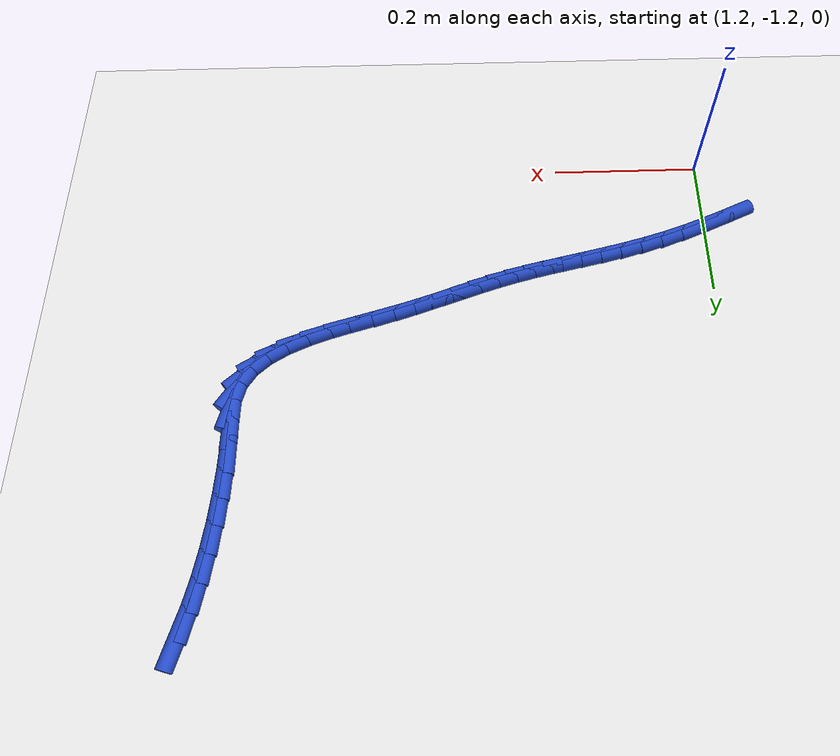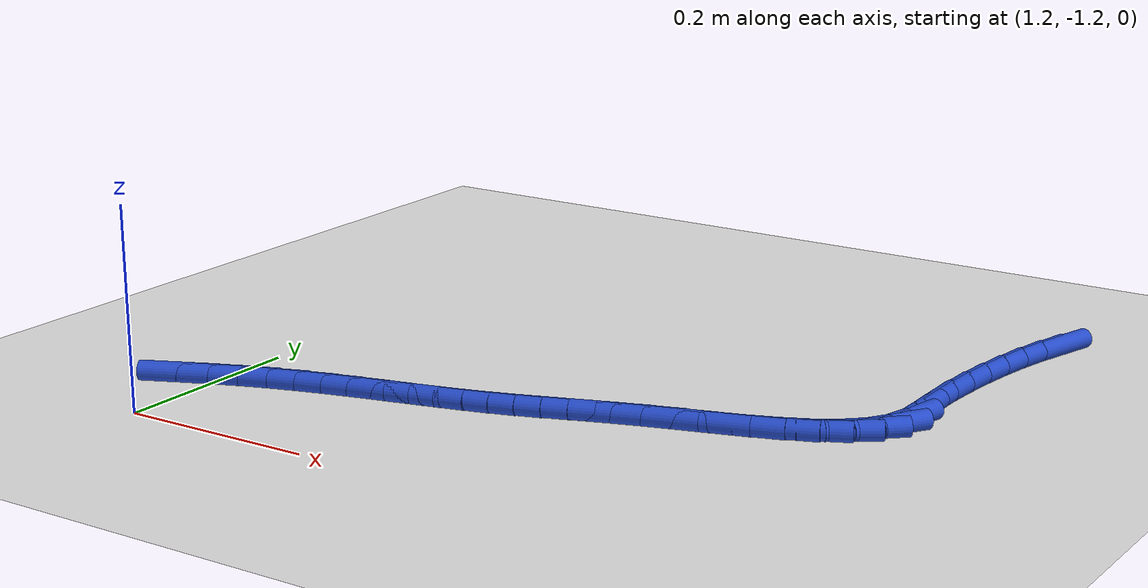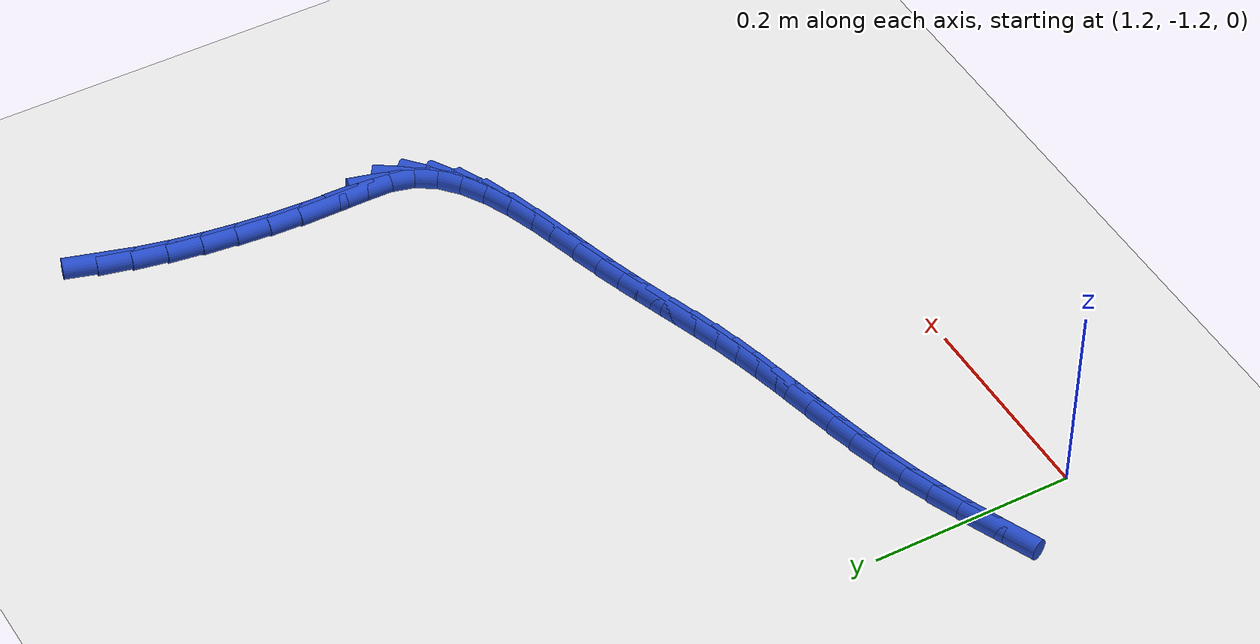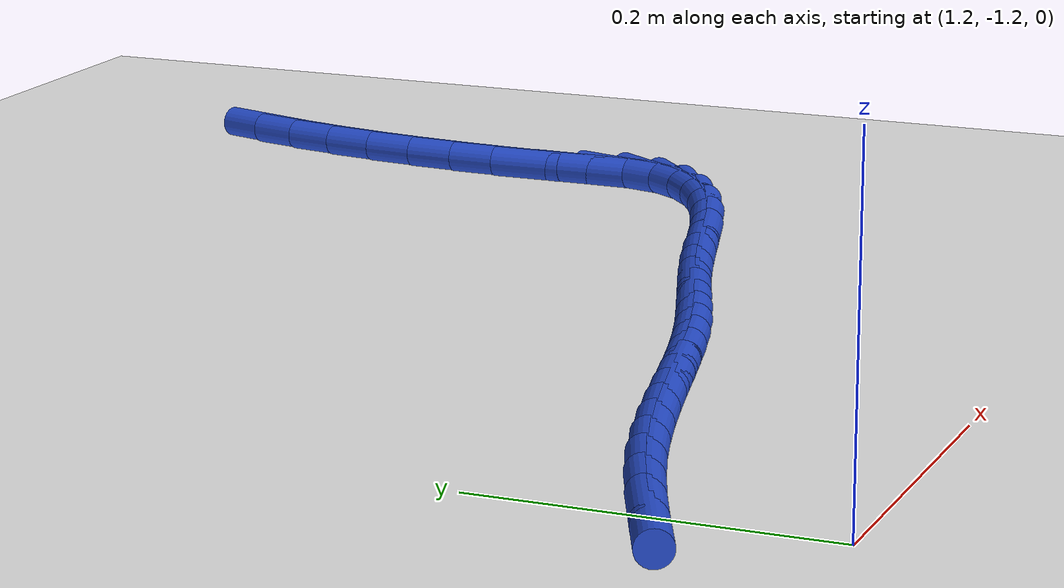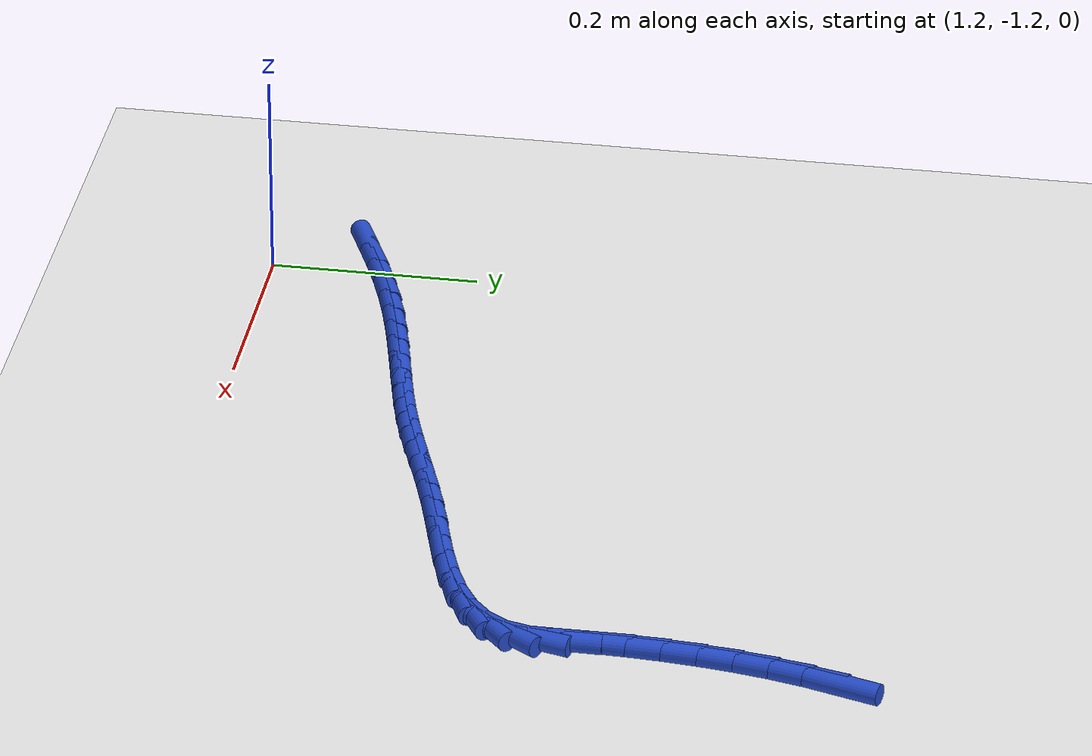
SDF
<sdf version="1.6">
 <world name="default">
  <model name="ground_plane">
   <static>1</static>
   <link name="link">
    <collision name="collision">
     <geometry><plane><normal>0 0 1</normal><size>100 100</size></plane></geometry>
     <surface><friction><ode><mu>100</mu><mu2>50</mu2></ode></friction></surface>
    </collision>
    <visual name="visual">
     <cast_shadows>0</cast_shadows>
     <geometry><plane><normal>0 0 1</normal><size>100 100</size></plane></geometry>
     <material>
      <script><uri>file://media/materials/scripts/gazebo.material</uri><name>Gazebo/WhiteGlow</name></script>
     </material>
    </visual>
   </link>
  </model>
  <model name="line">
   <link name="link_174">
    <pose>1.8558503074562895 -0.5679464968411793 0.01 0 1.57 1.282922517592219</pose>
    <collision name="collision">
     <geometry><cylinder><radius>0.01</radius><length>0.08</length></cylinder></geometry>
    </collision>
    <visual name="visual">
     <material>
      <script><name>Gazebo/Blue</name><uri>file://media/materials/scripts/gazebo.material</uri></script>
     </material>
     <geometry><cylinder><radius>0.01</radius><length>0.08</length></cylinder></geometry>
    </visual>
   </link>
   <link name="link_175">
    <pose>1.8469704388279358 -0.5979360508107192 0.01 0 1.57 1.343258709907164</pose>
    <collision name="collision">
     <geometry><cylinder><radius>0.01</radius><length>0.08</length></cylinder></geometry>
    </collision>
    <visual name="visual">
     <material>
      <script><name>Gazebo/Blue</name><uri>file://media/materials/scripts/gazebo.material</uri></script>
     </material>
     <geometry><cylinder><radius>0.01</radius><length>0.08</length></cylinder></geometry>
    </visual>
   </link>
   <link name="link_176">
    <pose>1.8396580727152667 -0.6295164690733773 0.01 0 1.57 1.3939073807482503</pose>
    <collision name="collision">
     <geometry><cylinder><radius>0.01</radius><length>0.08</length></cylinder></geometry>
    </collision>
    <visual name="visual">
     <material>
      <script><name>Gazebo/Blue</name><uri>file://media/materials/scripts/gazebo.material</uri></script>
     </material>
     <geometry><cylinder><radius>0.01</radius><length>0.08</length></cylinder></geometry>
    </visual>
   </link>
   <link name="link_177">
    <pose>1.8338266723658756 -0.6621383615480727 0.01 0 1.57 1.4375987750736676</pose>
    <collision name="collision">
     <geometry><cylinder><radius>0.01</radius><length>0.08</length></cylinder></geometry>
    </collision>
    <visual name="visual">
     <material>
      <script><name>Gazebo/Blue</name><uri>file://media/materials/scripts/gazebo.material</uri></script>
     </material>
     <geometry><cylinder><radius>0.01</radius><length>0.08</length></cylinder></geometry>
    </visual>
   </link>
   <link name="link_178">
    <pose>1.8293897010273585 -0.695252338153725 0.01 0 1.57 1.4764195103034348</pose>
    <collision name="collision">
     <geometry><cylinder><radius>0.01</radius><length>0.08</length></cylinder></geometry>
    </collision>
    <visual name="visual">
     <material>
      <script><name>Gazebo/Blue</name><uri>file://media/materials/scripts/gazebo.material</uri></script>
     </material>
     <geometry><cylinder><radius>0.01</radius><length>0.08</length></cylinder></geometry>
    </visual>
   </link>
   <link name="link_179">
    <pose>1.8262606219473083 -0.7283090088092534 0.01 0 1.57 1.5120742383769348</pose>
    <collision name="collision">
     <geometry><cylinder><radius>0.01</radius><length>0.08</length></cylinder></geometry>
    </collision>
    <visual name="visual">
     <material>
      <script><name>Gazebo/Blue</name><uri>file://media/materials/scripts/gazebo.material</uri></script>
     </material>
     <geometry><cylinder><radius>0.01</radius><length>0.08</length></cylinder></geometry>
    </visual>
   </link>
   <link name="link_180">
    <pose>1.8243528983733204 -0.7607589834335778 0.01 0 1.57 1.5461030797705562</pose>
    <collision name="collision">
     <geometry><cylinder><radius>0.01</radius><length>0.08</length></cylinder></geometry>
    </collision>
    <visual name="visual">
     <material>
      <script><name>Gazebo/Blue</name><uri>file://media/materials/scripts/gazebo.material</uri></script>
     </material>
     <geometry><cylinder><radius>0.01</radius><length>0.08</length></cylinder></geometry>
    </visual>
   </link>
   <link name="link_181">
    <pose>1.823579993552988 -0.7920528719456181 0.01 0 1.57 -1.5615964353924794</pose>
    <collision name="collision">
     <geometry><cylinder><radius>0.01</radius><length>0.08</length></cylinder></geometry>
    </collision>
    <visual name="visual">
     <material>
      <script><name>Gazebo/Blue</name><uri>file://media/materials/scripts/gazebo.material</uri></script>
     </material>
     <geometry><cylinder><radius>0.01</radius><length>0.08</length></cylinder></geometry>
    </visual>
   </link>
   <link name="link_182">
    <pose>1.8238522074912762 -0.8216408579833799 0.01 0 1.57 1.5576631695762932</pose>
    <collision name="collision">
     <geometry><cylinder><radius>0.01</radius><length>0.08</length></cylinder></geometry>
    </collision>
    <visual name="visual">
     <material>
      <script><name>Gazebo/Blue</name><uri>file://media/materials/scripts/gazebo.material</uri></script>
     </material>
     <geometry><cylinder><radius>0.01</radius><length>0.08</length></cylinder></geometry>
    </visual>
   </link>
   <link name="link_183">
    <pose>1.823496031130066 -0.8487596899064013 0.01 0 1.57 1.314437724903297</pose>
    <collision name="collision">
     <geometry><cylinder><radius>0.01</radius><length>0.08</length></cylinder></geometry>
    </collision>
    <visual name="visual">
     <material>
      <script><name>Gazebo/Blue</name><uri>file://media/materials/scripts/gazebo.material</uri></script>
     </material>
     <geometry><cylinder><radius>0.01</radius><length>0.08</length></cylinder></geometry>
    </visual>
   </link>
   <link name="link_184">
    <pose>1.8173383029628505 -0.8722511531645064 0.01 0 1.57 0.9904821658001113</pose>
    <collision name="collision">
     <geometry><cylinder><radius>0.01</radius><length>0.08</length></cylinder></geometry>
    </collision>
    <visual name="visual">
     <material>
      <script><name>Gazebo/Blue</name><uri>file://media/materials/scripts/gazebo.material</uri></script>
     </material>
     <geometry><cylinder><radius>0.01</radius><length>0.08</length></cylinder></geometry>
    </visual>
   </link>
   <link name="link_185">
    <pose>1.804336502430473 -0.8920825326689694 0.01 0 1.57 0.7277628560491689</pose>
    <collision name="collision">
     <geometry><cylinder><radius>0.01</radius><length>0.08</length></cylinder></geometry>
    </collision>
    <visual name="visual">
     <material>
      <script><name>Gazebo/Blue</name><uri>file://media/materials/scripts/gazebo.material</uri></script>
     </material>
     <geometry><cylinder><radius>0.01</radius><length>0.08</length></cylinder></geometry>
    </visual>
   </link>
   <link name="link_186">
    <pose>1.7856076430463494 -0.9087680126335397 0.01 0 1.57 0.5422851022398922</pose>
    <collision name="collision">
     <geometry><cylinder><radius>0.01</radius><length>0.08</length></cylinder></geometry>
    </collision>
    <visual name="visual">
     <material>
      <script><name>Gazebo/Blue</name><uri>file://media/materials/scripts/gazebo.material</uri></script>
     </material>
     <geometry><cylinder><radius>0.01</radius><length>0.08</length></cylinder></geometry>
    </visual>
   </link>
   <link name="link_187">
    <pose>1.7622790919613938 -0.9228243993177122 0.01 0 1.57 0.4192395900970782</pose>
    <collision name="collision">
     <geometry><cylinder><radius>0.01</radius><length>0.08</length></cylinder></geometry>
    </collision>
    <visual name="visual">
     <material>
      <script><name>Gazebo/Blue</name><uri>file://media/materials/scripts/gazebo.material</uri></script>
     </material>
     <geometry><cylinder><radius>0.01</radius><length>0.08</length></cylinder></geometry>
    </visual>
   </link>
   <link name="link_188">
    <pose>1.7354782163265192 -0.9347684989809816 0.01 0 1.57 0.3411785126042</pose>
    <collision name="collision">
     <geometry><cylinder><radius>0.01</radius><length>0.08</length></cylinder></geometry>
    </collision>
    <visual name="visual">
     <material>
      <script><name>Gazebo/Blue</name><uri>file://media/materials/scripts/gazebo.material</uri></script>
     </material>
     <geometry><cylinder><radius>0.01</radius><length>0.08</length></cylinder></geometry>
    </visual>
   </link>
   <link name="link_189">
    <pose>1.7063323832926387 -0.9451171178828417 0.01 0 1.57 0.2963117961967088</pose>
    <collision name="collision">
     <geometry><cylinder><radius>0.01</radius><length>0.08</length></cylinder></geometry>
    </collision>
    <visual name="visual">
     <material>
      <script><name>Gazebo/Blue</name><uri>file://media/materials/scripts/gazebo.material</uri></script>
     </material>
     <geometry><cylinder><radius>0.01</radius><length>0.08</length></cylinder></geometry>
    </visual>
   </link>
   <link name="link_190">
    <pose>1.675968960010666 -0.9543870622827884 0.01 0 1.57 0.2785131981245011</pose>
    <collision name="collision">
     <geometry><cylinder><radius>0.01</radius><length>0.08</length></cylinder></geometry>
    </collision>
    <visual name="visual">
     <material>
      <script><name>Gazebo/Blue</name><uri>file://media/materials/scripts/gazebo.material</uri></script>
     </material>
     <geometry><cylinder><radius>0.01</radius><length>0.08</length></cylinder></geometry>
    </visual>
   </link>
   <link name="link_191">
    <pose>1.6455153136315162 -0.963095138440315 0.01 0 1.57 0.28631481158759475</pose>
    <collision name="collision">
     <geometry><cylinder><radius>0.01</radius><length>0.08</length></cylinder></geometry>
    </collision>
    <visual name="visual">
     <material>
      <script><name>Gazebo/Blue</name><uri>file://media/materials/scripts/gazebo.material</uri></script>
     </material>
     <geometry><cylinder><radius>0.01</radius><length>0.08</length></cylinder></geometry>
    </visual>
   </link>
   <link name="link_192">
    <pose>1.6160953575299095 -0.9717564859586432 0.01 0 1.57 0.31084357801870904</pose>
    <collision name="collision">
     <geometry><cylinder><radius>0.01</radius><length>0.08</length></cylinder></geometry>
    </collision>
    <visual name="visual">
     <material>
      <script><name>Gazebo/Blue</name><uri>file://media/materials/scripts/gazebo.material</uri></script>
     </material>
     <geometry><cylinder><radius>0.01</radius><length>0.08</length></cylinder></geometry>
    </visual>
   </link>
   <link name="link_193">
    <pose>1.5883708204503584 -0.9806632123536233 0.01 0 1.57 0.32979973446598054</pose>
    <collision name="collision">
     <geometry><cylinder><radius>0.01</radius><length>0.08</length></cylinder></geometry>
    </collision>
    <visual name="visual">
     <material>
      <script><name>Gazebo/Blue</name><uri>file://media/materials/scripts/gazebo.material</uri></script>
     </material>
     <geometry><cylinder><radius>0.01</radius><length>0.08</length></cylinder></geometry>
    </visual>
   </link>
   <link name="link_194">
    <pose>1.5620809407785117 -0.989662267650206 0.01 0 1.57 0.33867017774691643</pose>
    <collision name="collision">
     <geometry><cylinder><radius>0.01</radius><length>0.08</length></cylinder></geometry>
    </collision>
    <visual name="visual">
     <material>
      <script><name>Gazebo/Blue</name><uri>file://media/materials/scripts/gazebo.material</uri></script>
     </material>
     <geometry><cylinder><radius>0.01</radius><length>0.08</length></cylinder></geometry>
    </visual>
   </link>
   <link name="link_195">
    <pose>1.5368554148062235 -0.9985477411760417 0.01 0 1.57 0.33594703804124265</pose>
    <collision name="collision">
     <geometry><cylinder><radius>0.01</radius><length>0.08</length></cylinder></geometry>
    </collision>
    <visual name="visual">
     <material>
      <script><name>Gazebo/Blue</name><uri>file://media/materials/scripts/gazebo.material</uri></script>
     </material>
     <geometry><cylinder><radius>0.01</radius><length>0.08</length></cylinder></geometry>
    </visual>
   </link>
   <link name="link_196">
    <pose>1.5123239388253482 -1.0071137222587814 0.01 0 1.57 0.3206844528955643</pose>
    <collision name="collision">
     <geometry><cylinder><radius>0.01</radius><length>0.08</length></cylinder></geometry>
    </collision>
    <visual name="visual">
     <material>
      <script><name>Gazebo/Blue</name><uri>file://media/materials/scripts/gazebo.material</uri></script>
     </material>
     <geometry><cylinder><radius>0.01</radius><length>0.08</length></cylinder></geometry>
    </visual>
   </link>
   <link name="link_197">
    <pose>1.4881162091277398 -1.0151543002260757 0.01 0 1.57 0.29300868329925184</pose>
    <collision name="collision">
     <geometry><cylinder><radius>0.01</radius><length>0.08</length></cylinder></geometry>
    </collision>
    <visual name="visual">
     <material>
      <script><name>Gazebo/Blue</name><uri>file://media/materials/scripts/gazebo.material</uri></script>
     </material>
     <geometry><cylinder><radius>0.01</radius><length>0.08</length></cylinder></geometry>
    </visual>
   </link>
   <link name="link_198">
    <pose>1.4638666780596428 -1.0224701981937208 0.01 0 1.57 0.26285749131362834</pose>
    <collision name="collision">
     <geometry><cylinder><radius>0.01</radius><length>0.08</length></cylinder></geometry>
    </collision>
    <visual name="visual">
     <material>
      <script><name>Gazebo/Blue</name><uri>file://media/materials/scripts/gazebo.material</uri></script>
     </material>
     <geometry><cylinder><radius>0.01</radius><length>0.08</length></cylinder></geometry>
    </visual>
   </link>
   <link name="link_199">
    <pose>1.43935573324112 -1.0290656911316496 0.01 0 1.57 0.241581448232965</pose>
    <collision name="collision">
     <geometry><cylinder><radius>0.01</radius><length>0.08</length></cylinder></geometry>
    </collision>
    <visual name="visual">
     <material>
      <script><name>Gazebo/Blue</name><uri>file://media/materials/scripts/gazebo.material</uri></script>
     </material>
     <geometry><cylinder><radius>0.01</radius><length>0.08</length></cylinder></geometry>
    </visual>
   </link>
   <link name="link_200">
    <pose>1.4145334528075062 -1.0351817398918874 0.01 0 1.57 0.22987003623410013</pose>
    <collision name="collision">
     <geometry><cylinder><radius>0.01</radius><length>0.08</length></cylinder></geometry>
    </collision>
    <visual name="visual">
     <material>
      <script><name>Gazebo/Blue</name><uri>file://media/materials/scripts/gazebo.material</uri></script>
     </material>
     <geometry><cylinder><radius>0.01</radius><length>0.08</length></cylinder></geometry>
    </visual>
   </link>
   <link name="link_201">
    <pose>1.3893594558971323 -1.0410726132046701 0.01 0 1.57 0.22754511676298944</pose>
    <collision name="collision">
     <geometry><cylinder><radius>0.01</radius><length>0.08</length></cylinder></geometry>
    </collision>
    <visual name="visual">
     <material>
      <script><name>Gazebo/Blue</name><uri>file://media/materials/scripts/gazebo.material</uri></script>
     </material>
     <geometry><cylinder><radius>0.01</radius><length>0.08</length></cylinder></geometry>
    </visual>
   </link>
   <link name="link_202">
    <pose>1.363793361648332 -1.0469925798002369 0.01 0 1.57 0.23422332803973123</pose>
    <collision name="collision">
     <geometry><cylinder><radius>0.01</radius><length>0.08</length></cylinder></geometry>
    </collision>
    <visual name="visual">
     <material>
      <script><name>Gazebo/Blue</name><uri>file://media/materials/scripts/gazebo.material</uri></script>
     </material>
     <geometry><cylinder><radius>0.01</radius><length>0.08</length></cylinder></geometry>
    </visual>
   </link>
   <link name="link_203">
    <pose>1.3377947891994368 -1.0531959084088234 0.01 0 1.57 0.24935065327877257</pose>
    <collision name="collision">
     <geometry><cylinder><radius>0.01</radius><length>0.08</length></cylinder></geometry>
    </collision>
    <visual name="visual">
     <material>
      <script><name>Gazebo/Blue</name><uri>file://media/materials/scripts/gazebo.material</uri></script>
     </material>
     <geometry><cylinder><radius>0.01</radius><length>0.08</length></cylinder></geometry>
    </visual>
   </link>
   <link name="link_204">
    <pose>1.3113233576887793 -1.0599368677606682 0.01 0 1.57 0.27222334280253063</pose>
    <collision name="collision">
     <geometry><cylinder><radius>0.01</radius><length>0.08</length></cylinder></geometry>
    </collision>
    <visual name="visual">
     <material>
      <script><name>Gazebo/Blue</name><uri>file://media/materials/scripts/gazebo.material</uri></script>
     </material>
     <geometry><cylinder><radius>0.01</radius><length>0.08</length></cylinder></geometry>
    </visual>
   </link>
   <link name="link_205">
    <pose>1.284338686254692 -1.0674697265860076 0.01 0 1.57 0.30200167991278587</pose>
    <collision name="collision">
     <geometry><cylinder><radius>0.01</radius><length>0.08</length></cylinder></geometry>
    </collision>
    <visual name="visual">
     <material>
      <script><name>Gazebo/Blue</name><uri>file://media/materials/scripts/gazebo.material</uri></script>
     </material>
     <geometry><cylinder><radius>0.01</radius><length>0.08</length></cylinder></geometry>
    </visual>
   </link>
   <link name="link_206">
    <pose>1.2568003940355073 -1.0760487536150793 0.01 0 1.57 0.3377245498787006</pose>
    <collision name="collision">
     <geometry><cylinder><radius>0.01</radius><length>0.08</length></cylinder></geometry>
    </collision>
    <visual name="visual">
     <material>
      <script><name>Gazebo/Blue</name><uri>file://media/materials/scripts/gazebo.material</uri></script>
     </material>
     <geometry><cylinder><radius>0.01</radius><length>0.08</length></cylinder></geometry>
    </visual>
   </link>
   <link name="link_207">
    <pose>1.2286681001695576 -1.0859282175781206 0.01 0 1.57 0.3752101490972839</pose>
    <collision name="collision">
     <geometry><cylinder><radius>0.01</radius><length>0.08</length></cylinder></geometry>
    </collision>
    <visual name="visual">
     <material>
      <script><name>Gazebo/Blue</name><uri>file://media/materials/scripts/gazebo.material</uri></script>
     </material>
     <geometry><cylinder><radius>0.01</radius><length>0.08</length></cylinder></geometry>
    </visual>
   </link>
   <link name="link_208">
    <pose>1.19993269132607 -1.0972462131169793 0.01 0 1.57 0.4017094788669275</pose>
    <collision name="collision">
     <geometry><cylinder><radius>0.01</radius><length>0.08</length></cylinder></geometry>
    </collision>
    <visual name="visual">
     <material>
      <script><name>Gazebo/Blue</name><uri>file://media/materials/scripts/gazebo.material</uri></script>
     </material>
     <geometry><cylinder><radius>0.01</radius><length>0.08</length></cylinder></geometry>
    </visual>
   </link>
   <link name="link_209">
    <pose>1.1707149544577662 -1.109658192126083 0.01 0 1.57 0.4155287596874193</pose>
    <collision name="collision">
     <geometry><cylinder><radius>0.01</radius><length>0.08</length></cylinder></geometry>
    </collision>
    <visual name="visual">
     <material>
      <script><name>Gazebo/Blue</name><uri>file://media/materials/scripts/gazebo.material</uri></script>
     </material>
     <geometry><cylinder><radius>0.01</radius><length>0.08</length></cylinder></geometry>
    </visual>
   </link>
  </model>
 </world>
</sdf>
